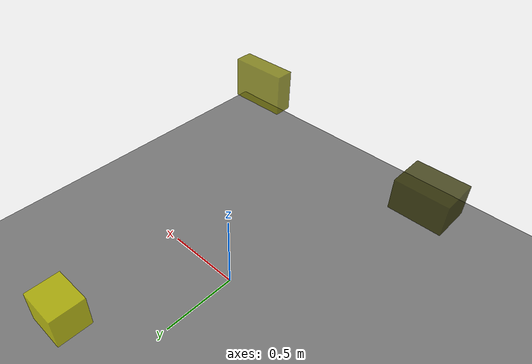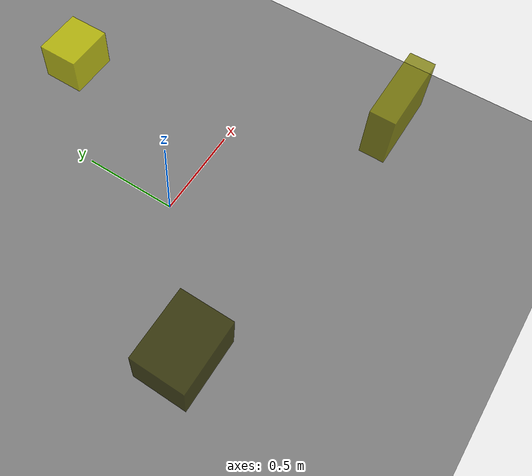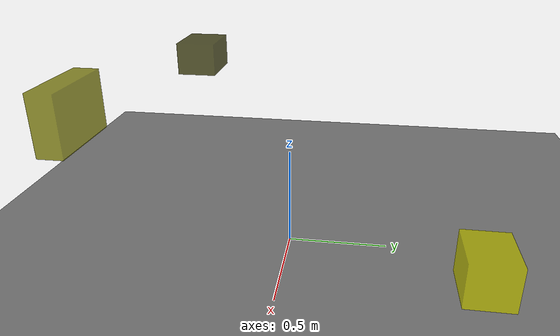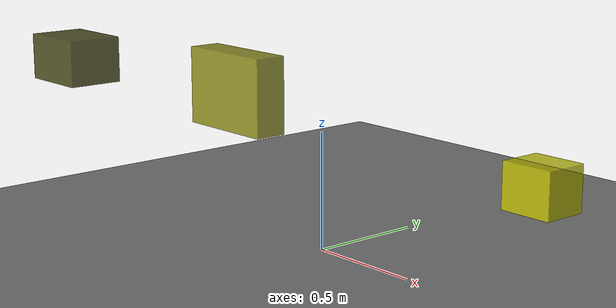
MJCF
<?xml version="1.0"?>
<mujoco model="obstacle_scene">
  <compiler angle="radian" coordinate="local"/>
  <option timestep="0.001" gravity="0 0 -9.81"/>

  <asset>
    <material name="obstacle_mat" rgba="0.8 0.8 0.0 0.8"/>
    <material name="ground_mat" rgba="0.5 0.5 0.5 1"/>
  </asset>

  <worldbody>
    <!-- Ground plane -->
    <geom name="ground" type="plane" size="3 3 0.1" material="ground_mat"/>

    <!-- Obstacles -->
    <body name="obstacle_0" pos="-0.793100 -0.661959 0.780236">
      <geom name="obs_0" type="box" size="0.150424 0.112669 0.092965" rgba="0.2 0.2 0.0 0.8"/>
    </body>
    <body name="obstacle_1" pos="0.508251 -0.820339 0.850970">
      <geom name="obs_1" type="box" size="0.179760 0.055846 0.131067" rgba="0.5 0.5 0.0 0.8"/>
    </body>
    <body name="obstacle_2" pos="0.411523 0.904272 0.196544">
      <geom name="obs_2" type="box" size="0.131990 0.110774 0.110428" rgba="0.8 0.8 0.0 0.8"/>
    </body>
  </worldbody>
</mujoco>
